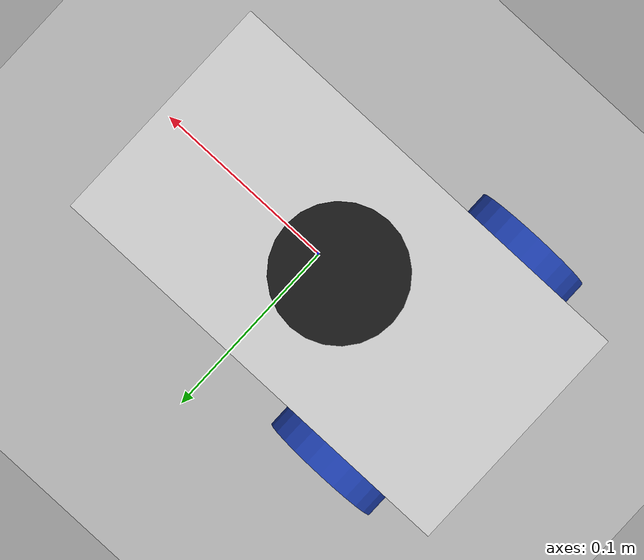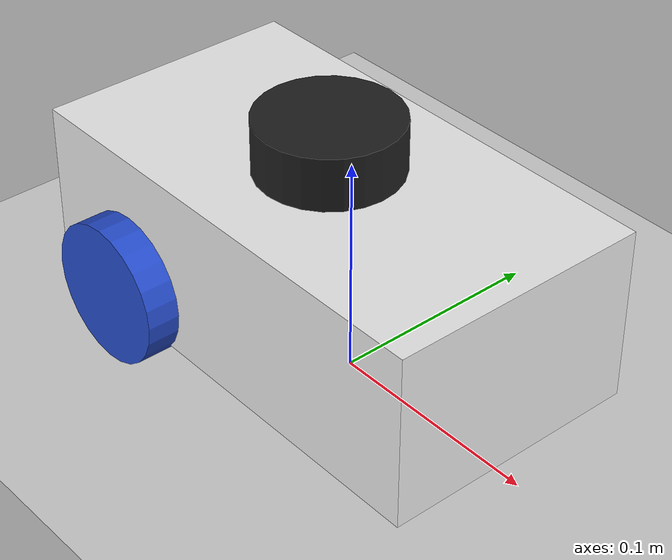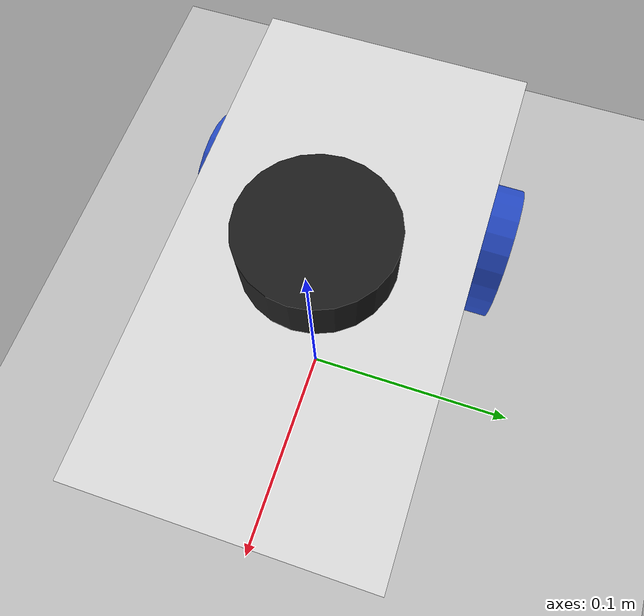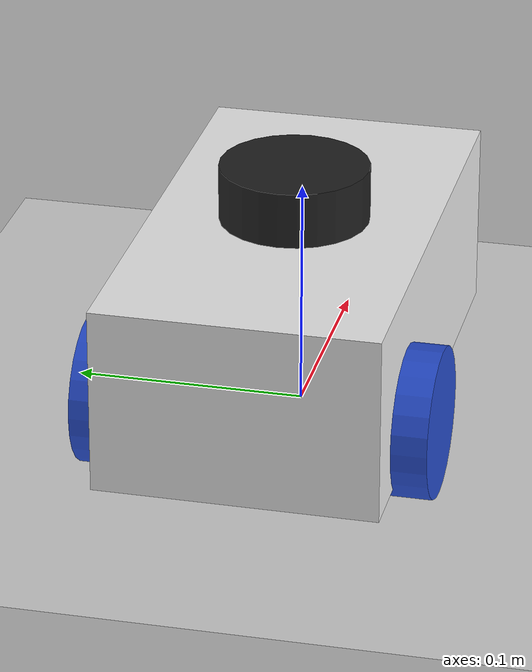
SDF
<sdf version="1.7">
 <world name="default">
  <light name="sun" type="directional">
   <pose>0 0 10 0 -0 0</pose>
   <diffuse>0.8 0.8 0.8 1</diffuse>
   <specular>0.2 0.2 0.2 1</specular>
   <attenuation>
    <range>1000</range>
    <constant>0.9</constant>
    <linear>0.01</linear>
    <quadratic>0.001</quadratic>
   </attenuation>
   <direction>-0.5 0.1 -0.9</direction>
   <spot><inner_angle>0</inner_angle><outer_angle>0</outer_angle><falloff>0</falloff></spot>
  </light>
  <model name="ground_plane">
   <static>1</static>
   <link name="link">
    <collision name="collision">
     <geometry><plane><normal>0 0 1</normal><size>100 100</size></plane></geometry>
     <surface><friction><ode><mu>100</mu><mu2>50</mu2></ode></friction></surface>
    </collision>
    <visual name="visual">
     <cast_shadows>0</cast_shadows>
     <geometry><plane><normal>0 0 1</normal><size>100 100</size></plane></geometry>
     <material>
      <script><uri>file://media/materials/scripts/gazebo.material</uri><name>Gazebo/Grey</name></script>
     </material>
    </visual>
   </link>
  </model>
  <gravity>0 0 -9.8</gravity>
  <magnetic_field>6e-06 2.3e-05 -4.2e-05</magnetic_field>
  <atmosphere type="adiabatic"/>
  <physics type="ode">
   <max_step_size>0.001</max_step_size>
   <real_time_factor>1</real_time_factor>
   <real_time_update_rate>1000</real_time_update_rate>
  </physics>
  <scene><ambient>0.4 0.4 0.4 1</ambient><background>0.7 0.7 0.7 1</background><shadows>1</shadows></scene>
  <audio><device>default</device></audio>
  <spherical_coordinates>
   <surface_model>EARTH_WGS84</surface_model>
   <latitude_deg>0</latitude_deg>
   <longitude_deg>0</longitude_deg>
   <elevation>0</elevation>
   <heading_deg>0</heading_deg>
  </spherical_coordinates>
  <model name="my_bot">
   <link name="base_link">
    <inertial>
     <pose>0.067 0 0.024143 0 -0 0</pose>
     <mass>0.7</mass>
     <inertia>
      <ixx>0.00100881</ixx>
      <ixy>0</ixy>
      <ixz>0.000169</ixz>
      <iyy>0.00284548</iyy>
      <iyz>0</iyz>
      <izz>0.00312883</izz>
     </inertia>
    </inertial>
    <collision name="base_link_fixed_joint_lump__chassis_collision">
     <pose>0.057 0 0.02 0 -0 0</pose>
     <geometry><box><size>0.22 0.12 0.08</size></box></geometry>
     <surface><friction><ode><mu>0.2</mu><mu2>0.2</mu2></ode></friction></surface>
    </collision>
    <collision name="base_link_fixed_joint_lump__cast_wheel_collision_1">
     <pose>0.127 0 0 0 -0 0</pose>
     <geometry><sphere><radius>0.032</radius></sphere></geometry>
     <surface><friction><ode><mu>0.2</mu><mu2>0.2</mu2></ode></friction></surface>
    </collision>
    <collision name="base_link_fixed_joint_lump__laser_frame_collision_2">
     <pose>0.057 0 0.069 0 -0 0</pose>
     <geometry><cylinder><length>0.03</length><radius>0.032</radius></cylinder></geometry>
    </collision>
    <visual name="base_link_fixed_joint_lump__chassis_visual">
     <pose>0.057 0 0.02 0 -0 0</pose>
     <geometry><box><size>0.22 0.12 0.08</size></box></geometry>
     <material>
      <script><name>Gazebo/White</name><uri>file://media/materials/scripts/gazebo.material</uri></script>
     </material>
    </visual>
    <visual name="base_link_fixed_joint_lump__cast_wheel_visual_1">
     <pose>0.127 0 0 0 -0 0</pose>
     <geometry><sphere><radius>0.032</radius></sphere></geometry>
     <material>
      <script><name>Gazebo/Black</name><uri>file://media/materials/scripts/gazebo.material</uri></script>
     </material>
    </visual>
    <visual name="base_link_fixed_joint_lump__laser_frame_visual_2">
     <pose>0.057 0 0.069 0 -0 0</pose>
     <geometry><cylinder><length>0.03</length><radius>0.032</radius></cylinder></geometry>
     <material>
      <script><name>Gazebo/Black</name><uri>file://media/materials/scripts/gazebo.material</uri></script>
     </material>
    </visual>
    <sensor name="laser" type="ray">
     <visualize>1</visualize>
     <update_rate>10</update_rate>
     <ray>
      <scan>
       <horizontal>
        <samples>360</samples>
        <resolution>1</resolution>
        <min_angle>-3.14</min_angle>
        <max_angle>3.14</max_angle>
       </horizontal>
       <vertical><samples>1</samples><min_angle>0</min_angle><max_angle>0</max_angle></vertical>
      </scan>
      <range><min>0.3</min><max>12</max><resolution>1</resolution></range>
     </ray>
     <plugin name="laser_controller" filename="libgazebo_ros_ray_sensor.so">
      <ros><argument>~/out:=scan</argument></ros>
      <output_type>sensor_msgs/LaserScan</output_type>
      <frame_name>laser_frame</frame_name>
     </plugin>
     <pose>0.057 0 0.069 0 -0 0</pose>
    </sensor>
   </link>
   <joint name="left_back_wheel_joint" type="revolute">
    <pose relative_to="base_link">0 0.06 0 -1.5708 0 0</pose>
    <parent>base_link</parent>
    <child>left_back_wheel</child>
    <axis>
     <xyz>0 0 1</xyz>
     <limit><lower>-1e+16</lower><upper>1e+16</upper></limit>
     <dynamics><spring_reference>0</spring_reference><spring_stiffness>0</spring_stiffness></dynamics>
    </axis>
   </joint>
   <link name="left_back_wheel">
    <pose relative_to="left_back_wheel_joint">0 0 0 0 -0 0</pose>
    <inertial>
     <mass>0.1</mass>
     <inertia>
      <ixx>3.31e-05</ixx>
      <ixy>0</ixy>
      <ixz>0</ixz>
      <iyy>3.31e-05</iyy>
      <iyz>0</iyz>
      <izz>5.12e-05</izz>
     </inertia>
    </inertial>
    <collision name="left_back_wheel_collision">
     <geometry><sphere><radius>0.032</radius></sphere></geometry>
    </collision>
    <visual name="left_back_wheel_visual">
     <geometry><cylinder><length>0.03</length><radius>0.032</radius></cylinder></geometry>
     <material>
      <script><name>Gazebo/Blue</name><uri>file://media/materials/scripts/gazebo.material</uri></script>
     </material>
    </visual>
   </link>
   <joint name="right_back_wheel_joint" type="revolute">
    <pose relative_to="base_link">0 -0.06 0 1.5708 -0 0</pose>
    <parent>base_link</parent>
    <child>right_back_wheel</child>
    <axis>
     <xyz>0 0 -1</xyz>
     <limit><lower>-1e+16</lower><upper>1e+16</upper></limit>
     <dynamics><spring_reference>0</spring_reference><spring_stiffness>0</spring_stiffness></dynamics>
    </axis>
   </joint>
   <link name="right_back_wheel">
    <pose relative_to="right_back_wheel_joint">0 0 0 0 -0 0</pose>
    <inertial>
     <mass>0.1</mass>
     <inertia>
      <ixx>3.31e-05</ixx>
      <ixy>0</ixy>
      <ixz>0</ixz>
      <iyy>3.31e-05</iyy>
      <iyz>0</iyz>
      <izz>5.12e-05</izz>
     </inertia>
    </inertial>
    <collision name="right_back_wheel_collision">
     <geometry><sphere><radius>0.032</radius></sphere></geometry>
    </collision>
    <visual name="right_back_wheel_visual">
     <geometry><cylinder><length>0.03</length><radius>0.032</radius></cylinder></geometry>
     <material>
      <script><name>Gazebo/Blue</name><uri>file://media/materials/scripts/gazebo.material</uri></script>
     </material>
    </visual>
   </link>
   <static>0</static>
   <plugin name="gazebo_ros2_control" filename="libgazebo_ros2_control.so">
    <parameters>/home/mohamed/Desktop/my_robot/install/articubot_one/share/articubot_one/config/my_controllers.yaml</parameters>
   </plugin>
   <pose>-0.07097 0.000393 0.031998 -2.5e-05 -1.3e-05 -0.002351</pose>
  </model>
 </world>
</sdf>
